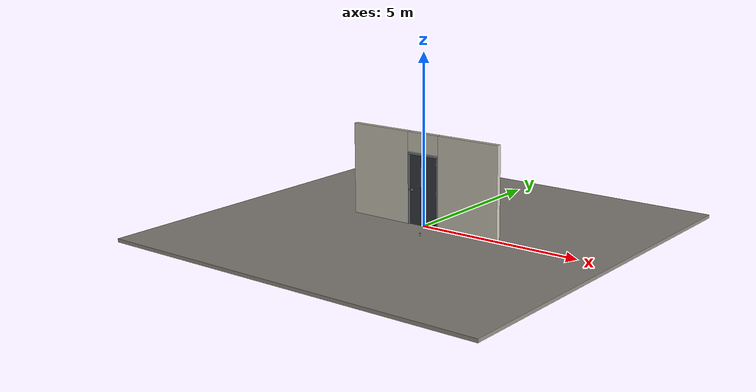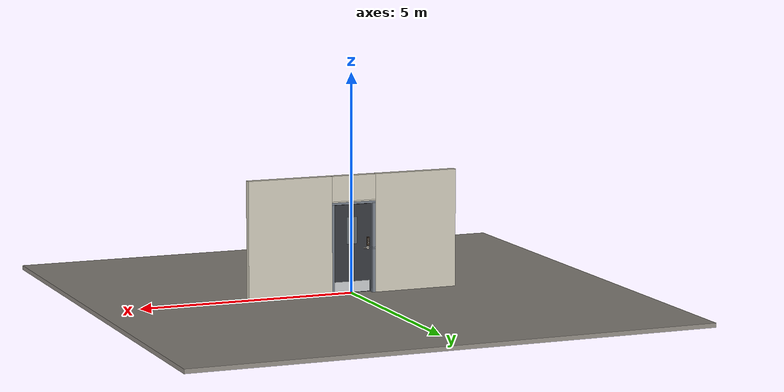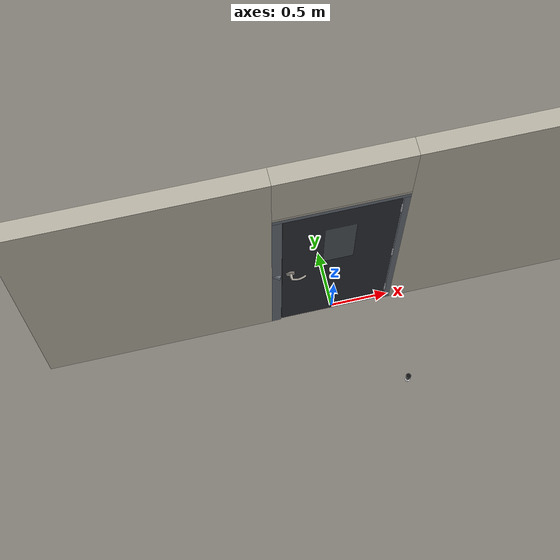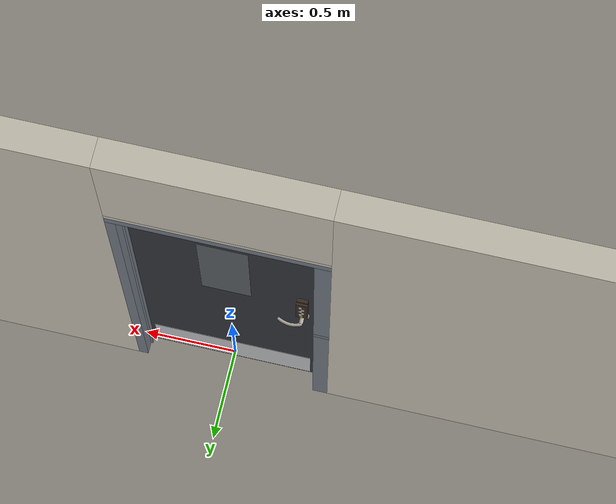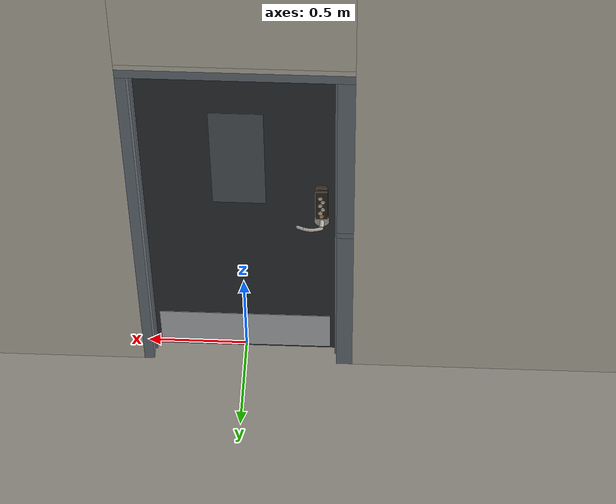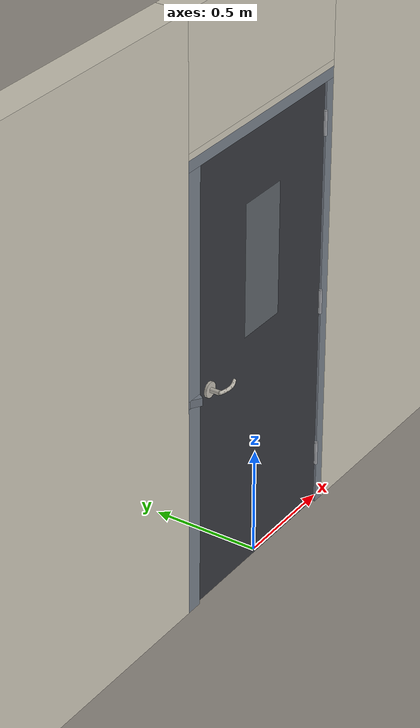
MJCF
<?xml version="1.0" ?>
<mujoco model="db0209_swing_single_full">
  <compiler angle="radian" meshdir="../../hardware" texturedir="../../textures" autolimits="true" inertiafromgeom="false"/>
  <option timestep="0.002" integrator="implicitfast" cone="elliptic" impratio="10" noslip_iterations="3">
    <flag multiccd="enable"/>
  </option>
  <size memory="16M"/>
  <default>
    <geom condim="4" solref="0.005 1" solimp="0.95 0.99 0.001"/>
    <joint solreflimit="0.005 1" solimplimit="0.95 0.99 0.001"/>
    <tendon solreflimit="0.005 1"/>
    <equality solref="0.002 1"/>
  </default>
  <visual>
    <headlight ambient="0.4 0.4 0.4" diffuse="0.7 0.7 0.7" specular="0.2 0.2 0.2"/>
    <quality shadowsize="4096"/>
    <map znear="0.01" zfar="60"/>
  </visual>
  <asset>
    <mesh name="hinge_e22b26c0c1" file="hinge_e22b26c0c1.obj"/>
    <mesh name="hinge_jamb_e1d088f8dc" file="hinge_jamb_e1d088f8dc.obj"/>
    <mesh name="keypad_body_91eb8ded3e" file="keypad_body_91eb8ded3e.obj"/>
    <mesh name="lever_a61139b160" file="lever_a61139b160.obj"/>
    <material name="mat_floor" rgba="0.55 0.53 0.5 1" specular="0.2" shininess="0.15" reflectance="0"/>
    <material name="mat_wall" rgba="0.78 0.76 0.7 1" specular="0.2" shininess="0.1" reflectance="0"/>
    <material name="mat_leaf" rgba="0.2 0.21 0.23 1" specular="0.2" shininess="0.63" reflectance="0"/>
    <material name="mat_glass" rgba="0.85 0.92 0.95 0.25" specular="0.2" shininess="0.95" reflectance="0.1"/>
    <material name="mat_hinge" rgba="0.65 0.66 0.68 1" specular="0.74" shininess="0.5" reflectance="0.36"/>
    <material name="mat_op_nickel_satin" rgba="0.72 0.7 0.66 1" specular="0.8" shininess="0.65" reflectance="0.4"/>
    <material name="mat_trim" rgba="0.85 0.66 0.3 1" specular="0.8" shininess="0.75" reflectance="0.4"/>
    <material name="mat_keypad" rgba="0.22 0.17 0.13 1" specular="0.8" shininess="0.6" reflectance="0.4"/>
    <material name="mat_key" rgba="0.85 0.85 0.82 1" specular="0.2" shininess="0.5" reflectance="0"/>
    <material name="mat_bolt" rgba="0.85 0.66 0.3 1" specular="0.8" shininess="0.75" reflectance="0.4"/>
    <material name="mat_frame" rgba="0.45 0.48 0.52 1" specular="0.32" shininess="0.6" reflectance="0.08"/>
    <material name="mat_seal" rgba="0.1 0.1 0.1 1" specular="0.2" shininess="0.1" reflectance="0"/>
    <material name="mat_kick" rgba="0.75 0.76 0.77 1" specular="0.8" shininess="0.65" reflectance="0.4"/>
    <material name="mat_bumper_stop" rgba="0.08 0.08 0.08 1" specular="0.2" shininess="0.1" reflectance="0"/>
    <material name="mat_stop_base" rgba="0.9 0.9 0.92 1" specular="0.8" shininess="0.9" reflectance="0.4"/>
    <texture name="skybox" type="skybox" builtin="gradient" rgb1="0.6 0.7 0.85" rgb2="0.9 0.92 0.95" width="256" height="256"/>
  </asset>
  <worldbody>
    <light name="sun" pos="1.5 -2.5 4" dir="-0.3 0.5 -0.8" directional="true" diffuse="0.8 0.8 0.8" specular="0.3 0.3 0.3" castshadow="true"/>
    <light name="fill" pos="-1.5 2.5 3" dir="0.3 -0.5 -0.7" directional="true" diffuse="0.35 0.35 0.4" castshadow="false"/>
    <camera name="robot_view" pos="0 -2.498687 1.734312" xyaxes="1 0 0 0 0.26963 0.962964" fovy="52"/>
    <camera name="far_view" pos="0 2.585687 1.734312" xyaxes="-1 0 0 0 -0.26963 0.962964" fovy="52"/>
    <camera name="iso" pos="-1.932062 -2.091938 2.141063" xyaxes="0.741536 -0.670913 0 0.242917 0.268487 0.932151" fovy="46"/>
    <camera name="detail_handle" pos="-0.1169 -0.877 1.296" xyaxes="0.97561 0.219512 0 -0.070934 0.315262 0.94635" fovy="38"/>
    <geom name="floor" type="box" size="6 6 0.05" pos="0 0 -0.05" material="mat_floor" group="0" contype="1" conaffinity="1" friction="0.8 0.005 0.0001" density="2400"/>
    <geom name="wall_left" type="box" size="0.97975 0.0725 1.35" pos="-1.52025 0.0435 1.35" material="mat_wall" group="0" contype="1" conaffinity="1" friction="0.6 0.005 0.0001" density="800"/>
    <geom name="wall_right" type="box" size="0.99475 0.0725 1.35" pos="1.50525 0.0435 1.35" material="mat_wall" group="0" contype="1" conaffinity="1" friction="0.6 0.005 0.0001" density="800"/>
    <geom name="wall_header" type="box" size="0.5255 0.0725 0.2875" pos="-0.015 0.0435 2.4125" material="mat_wall" group="0" contype="1" conaffinity="1" friction="0.6 0.005 0.0001" density="800"/>
    <geom name="hinge_0_jamb" type="mesh" mesh="hinge_jamb_e1d088f8dc" pos="0.4575 -0.029 0.259" quat="0 0 1 0" material="mat_hinge" group="1" contype="0" conaffinity="0" density="7850"/>
    <geom name="hinge_1_jamb" type="mesh" mesh="hinge_jamb_e1d088f8dc" pos="0.4575 -0.029 1.025" quat="0 0 1 0" material="mat_hinge" group="1" contype="0" conaffinity="0" density="7850"/>
    <geom name="hinge_2_jamb" type="mesh" mesh="hinge_jamb_e1d088f8dc" pos="0.4575 -0.029 1.861" quat="0 0 1 0" material="mat_hinge" group="1" contype="0" conaffinity="0" density="7850"/>
    <geom name="jamb_hinge" type="box" size="0.025 0.0725 1.0225" pos="0.4855 0.0435 1.0225" material="mat_frame" group="0" contype="1" conaffinity="1" friction="0.6 0.005 0.0001" density="300"/>
    <geom name="strike_1016_wall_n" type="box" size="0.04 0.05325 0.0183" pos="-0.5005 0.06275 1.016" material="mat_frame" group="0" contype="1" conaffinity="1" friction="0.6 0.005 0.0001" density="300"/>
    <geom name="strike_1016_wall_p" type="box" size="0.04 0.008 0.0183" pos="-0.5005 -0.0175 1.016" material="mat_frame" group="0" contype="1" conaffinity="1" friction="0.6 0.005 0.0001" density="300"/>
    <geom name="strike_1016_ramp" type="box" size="0.04 0.018028 0.0183" pos="-0.503782 -0.018312 1.016" quat="0.957092 0 0 -0.289784" material="mat_frame" group="0" contype="1" conaffinity="1" friction="0.12 0.005 0.0001" density="300"/>
    <geom name="strike_1016_back" type="box" size="0.0285 0.0095 0.0183" pos="-0.512 0 1.016" material="mat_frame" group="0" contype="1" conaffinity="1" friction="0.6 0.005 0.0001" density="300"/>
    <geom name="jamb_strike_0" type="box" size="0.04 0.0725 0.49885" pos="-0.5005 0.0435 0.49885" material="mat_frame" group="0" contype="1" conaffinity="1" friction="0.6 0.005 0.0001" density="300"/>
    <geom name="jamb_strike_1" type="box" size="0.04 0.0725 0.50535" pos="-0.5005 0.0435 1.53965" material="mat_frame" group="0" contype="1" conaffinity="1" friction="0.6 0.005 0.0001" density="300"/>
    <geom name="jamb_head" type="box" size="0.5255 0.0725 0.025" pos="-0.015 0.0435 2.07" material="mat_frame" group="0" contype="1" conaffinity="1" friction="0.6 0.005 0.0001" density="300"/>
    <geom name="head_stud" type="box" size="0.5255 0.0725 0.015" pos="-0.015 0.0435 2.11" material="mat_wall" group="0" contype="1" conaffinity="1" friction="0.6 0.005 0.0001" density="500"/>
    <geom name="stop_hinge" type="box" size="0.0055 0.016 1.0225" pos="0.455 0.0385 1.0225" material="mat_frame" group="0" contype="1" conaffinity="1" friction="0.6 0.005 0.0001" density="300"/>
    <geom name="stop_strike" type="box" size="0.0055 0.016 1.0225" pos="-0.455 0.0385 1.0225" material="mat_frame" group="0" contype="1" conaffinity="1" friction="0.6 0.005 0.0001" density="300"/>
    <geom name="stop_head" type="box" size="0.4605 0.016 0.0055" pos="0 0.0385 2.0395" material="mat_frame" group="0" contype="1" conaffinity="1" friction="0.6 0.005 0.0001" density="300"/>
    <geom name="seal_hinge" type="box" size="0.004 0.004 1.0225" pos="0.4575 0.026 1.0225" material="mat_seal" group="1" contype="0" conaffinity="0" density="1100"/>
    <geom name="seal_strike" type="box" size="0.004 0.004 1.0225" pos="-0.4575 0.026 1.0225" material="mat_seal" group="1" contype="0" conaffinity="0" density="1100"/>
    <geom name="seal_head" type="box" size="0.4405 0.004 0.008" pos="0 0.026 2.033" material="mat_seal" group="1" contype="0" conaffinity="0" density="1100"/>
    <geom name="door_stop_base" type="cylinder" size="0.022 0.003" pos="0.4735 -0.8059 0.003" material="mat_stop_base" group="0" contype="1" conaffinity="1" friction="0.6 0.005 0.0001" density="7850"/>
    <geom name="door_stop_post" type="cylinder" size="0.012 0.0245" pos="0.4735 -0.8059 0.0305" material="mat_stop_base" group="0" contype="1" conaffinity="1" friction="0.6 0.005 0.0001" density="7850"/>
    <geom name="door_stop_bumper" type="cylinder" size="0.022 0.02" pos="0.4735 -0.8059 0.075" material="mat_bumper_stop" group="0" contype="1" conaffinity="1" friction="0.6 0.005 0.0001" density="1100"/>
    <site name="approach_point" pos="0 -1.5 0" quat="1 0 0 0" size="0.05" rgba="0.2 0.9 0.2 0.5" group="4"/>
    <site name="goal_point" pos="0 1.5 0" quat="1 0 0 0" size="0.05" rgba="0.2 0.9 0.2 0.5" group="4"/>
    <site name="door_plane_center" pos="0 0 1.0225" quat="1 0 0 0" size="0.02" rgba="0.2 0.9 0.2 0.5" group="4"/>
    <body name="leaf" pos="0.4605 0 0">
      <inertial pos="-0.459259 0.001485 0.98116" mass="54.622674" quat="0.500018 0.499022 -0.502249 0.498703" diaginertia="3.959946698 19.757913809 23.696101358"/>
      <joint name="leaf_hinge" type="hinge" axis="0 0 1" pos="-0.003 -0.029 0" limited="true" range="0 1.570796" solreflimit="0.02 1" damping="0.30611" frictionloss="2.238429" armature="0.02"/>
      <geom name="leaf_slab" type="box" size="0.457 0.022 1.016" pos="-0.46 0 1.025" material="mat_leaf" group="0" contype="1" conaffinity="1" friction="0.4 0.005 0.0001" density="1"/>
      <geom name="leaf_glass_0" type="box" size="0.125 0.0228 0.3048" pos="-0.46 0 1.4314" material="mat_glass" group="1" contype="0" conaffinity="0" density="1"/>
      <geom name="hinge_0" type="mesh" mesh="hinge_e22b26c0c1" pos="-0.003 -0.029 0.259" quat="0 0 1 0" material="mat_hinge" group="1" contype="0" conaffinity="0" density="7850"/>
      <geom name="hinge_1" type="mesh" mesh="hinge_e22b26c0c1" pos="-0.003 -0.029 1.025" quat="0 0 1 0" material="mat_hinge" group="1" contype="0" conaffinity="0" density="7850"/>
      <geom name="hinge_2" type="mesh" mesh="hinge_e22b26c0c1" pos="-0.003 -0.029 1.861" quat="0 0 1 0" material="mat_hinge" group="1" contype="0" conaffinity="0" density="7850"/>
      <geom name="leaf_keypad_body" type="mesh" mesh="keypad_body_91eb8ded3e" pos="-0.847 0.022 1.156" quat="0 0 0.707107 0.707107" material="mat_keypad" group="0" contype="1" conaffinity="1" friction="0.6 0.005 0.0001" density="2000"/>
      <geom name="leaf_keypad_cylinder" type="cylinder" size="0.009 0.002" pos="-0.847 0.056 1.081" quat="0.707107 -0.707107 0 0" material="mat_trim" group="1" contype="0" conaffinity="0" density="7100"/>
      <geom name="leaf_latch_bolt_faceplate" type="box" size="0.0006 0.014 0.0283" pos="-0.9164 0 1.016" material="mat_bolt" group="1" contype="0" conaffinity="0" density="8500"/>
      <geom name="kick_plate_p" type="box" size="0.427 0.0008 0.125" pos="-0.46 0.0228 0.144" material="mat_kick" group="2" contype="0" conaffinity="0" density="7900"/>
      <site name="leaf_edge_mid" pos="-0.917 0 1.016" quat="1 0 0 0" size="0.02" rgba="0.2 0.9 0.2 0.5" group="4"/>
      <body name="leaf_handle" pos="-0.847 0 1.016">
        <inertial pos="0.022132 -0.050687 0" mass="0.463269" quat="0.312008 0 0 0.950079" diaginertia="0.000227859 0.000847742 0.000992066"/>
        <joint name="leaf_handle_hinge" type="hinge" axis="0 1 0" limited="true" range="0 0.87" damping="0.208392" frictionloss="0.052" stiffness="1" springref="-0.35" armature="0.01"/>
        <geom name="leaf_handle_spindle" type="cylinder" size="0.006 0.03" pos="0 0 0" quat="0.707107 -0.707107 0 0" material="mat_op_nickel_satin" group="1" contype="0" conaffinity="0" density="7850"/>
        <geom name="leaf_handle_lever_n" type="mesh" mesh="lever_a61139b160" pos="0 -0.022 0" quat="0 0 -0.707107 0.707107" material="mat_op_nickel_satin" group="1" contype="0" conaffinity="0" density="3000"/>
        <geom name="leaf_handle_lever_col_n" type="capsule" size="0.008 0.048" pos="0.056 -0.077 0" quat="0.707107 0 0.707107 0" material="mat_op_nickel_satin" group="3" contype="1" conaffinity="1" rgba="0.8 0.3 0.3 0.25" friction="0.7 0.01 0.0001" density="3000"/>
        <geom name="leaf_handle_hub_col_n" type="cylinder" size="0.012 0.022" pos="0 -0.052 0" quat="0.707107 -0.707107 0 0" material="mat_op_nickel_satin" group="3" contype="1" conaffinity="1" rgba="0.8 0.3 0.3 0.25" friction="0.6 0.005 0.0001" density="3000"/>
        <site name="leaf_handle_grip_n" pos="0.0896 -0.077 0" quat="1 0 0 0" size="0.012" rgba="0.2 0.9 0.2 0.5" group="4"/>
      </body>
      <body name="leaf_keypad_key_1" pos="-0.841 0.054 1.208">
        <inertial pos="0 0.002 0" mass="0.001221" quat="0 0 0.707107 -0.707107" diaginertia="0.000000026 0.000000026 0.000000049"/>
        <joint name="leaf_keypad_key_1_slide" type="slide" axis="0 -1 0" limited="true" range="0 0.004" damping="17.146" frictionloss="0.05" stiffness="1500" springref="-0.004" armature="0.1"/>
        <geom name="leaf_keypad_key_1_geom" type="cylinder" size="0.009 0.002" pos="0 0.002 0" quat="0.707107 -0.707107 0 0" material="mat_key" group="0" contype="1" conaffinity="1" friction="0.6 0.005 0.0001" density="1200"/>
        <site name="leaf_keypad_key_1_press" pos="0 0.006 0" quat="1 0 0 0" size="0.008" rgba="0.2 0.9 0.2 0.5" group="4"/>
      </body>
      <body name="leaf_keypad_key_2" pos="-0.853 0.054 1.182">
        <inertial pos="0 0.002 0" mass="0.001221" quat="0 0 0.707107 -0.707107" diaginertia="0.000000026 0.000000026 0.000000049"/>
        <joint name="leaf_keypad_key_2_slide" type="slide" axis="0 -1 0" limited="true" range="0 0.004" damping="17.146" frictionloss="0.05" stiffness="1500" springref="-0.004" armature="0.1"/>
        <geom name="leaf_keypad_key_2_geom" type="cylinder" size="0.009 0.002" pos="0 0.002 0" quat="0.707107 -0.707107 0 0" material="mat_key" group="0" contype="1" conaffinity="1" friction="0.6 0.005 0.0001" density="1200"/>
        <site name="leaf_keypad_key_2_press" pos="0 0.006 0" quat="1 0 0 0" size="0.008" rgba="0.2 0.9 0.2 0.5" group="4"/>
      </body>
      <body name="leaf_keypad_key_3" pos="-0.841 0.054 1.156">
        <inertial pos="0 0.002 0" mass="0.001221" quat="0 0 0.707107 -0.707107" diaginertia="0.000000026 0.000000026 0.000000049"/>
        <joint name="leaf_keypad_key_3_slide" type="slide" axis="0 -1 0" limited="true" range="0 0.004" damping="17.146" frictionloss="0.05" stiffness="1500" springref="-0.004" armature="0.1"/>
        <geom name="leaf_keypad_key_3_geom" type="cylinder" size="0.009 0.002" pos="0 0.002 0" quat="0.707107 -0.707107 0 0" material="mat_key" group="0" contype="1" conaffinity="1" friction="0.6 0.005 0.0001" density="1200"/>
        <site name="leaf_keypad_key_3_press" pos="0 0.006 0" quat="1 0 0 0" size="0.008" rgba="0.2 0.9 0.2 0.5" group="4"/>
      </body>
      <body name="leaf_keypad_key_4" pos="-0.853 0.054 1.13">
        <inertial pos="0 0.002 0" mass="0.001221" quat="0 0 0.707107 -0.707107" diaginertia="0.000000026 0.000000026 0.000000049"/>
        <joint name="leaf_keypad_key_4_slide" type="slide" axis="0 -1 0" limited="true" range="0 0.004" damping="17.146" frictionloss="0.05" stiffness="1500" springref="-0.004" armature="0.1"/>
        <geom name="leaf_keypad_key_4_geom" type="cylinder" size="0.009 0.002" pos="0 0.002 0" quat="0.707107 -0.707107 0 0" material="mat_key" group="0" contype="1" conaffinity="1" friction="0.6 0.005 0.0001" density="1200"/>
        <site name="leaf_keypad_key_4_press" pos="0 0.006 0" quat="1 0 0 0" size="0.008" rgba="0.2 0.9 0.2 0.5" group="4"/>
      </body>
      <body name="leaf_keypad_key_5" pos="-0.841 0.054 1.104">
        <inertial pos="0 0.002 0" mass="0.001221" quat="0 0 0.707107 -0.707107" diaginertia="0.000000026 0.000000026 0.000000049"/>
        <joint name="leaf_keypad_key_5_slide" type="slide" axis="0 -1 0" limited="true" range="0 0.004" damping="17.146" frictionloss="0.05" stiffness="1500" springref="-0.004" armature="0.1"/>
        <geom name="leaf_keypad_key_5_geom" type="cylinder" size="0.009 0.002" pos="0 0.002 0" quat="0.707107 -0.707107 0 0" material="mat_key" group="0" contype="1" conaffinity="1" friction="0.6 0.005 0.0001" density="1200"/>
        <site name="leaf_keypad_key_5_press" pos="0 0.006 0" quat="1 0 0 0" size="0.008" rgba="0.2 0.9 0.2 0.5" group="4"/>
      </body>
      <body name="leaf_handle_out" pos="-0.847 0 1.016">
        <inertial pos="0.025007 0.057273 0" mass="0.41" quat="-0.235955 0 0 0.971764" diaginertia="0.000156759 0.000717302 0.000791484"/>
        <joint name="leaf_handle_out_hinge" type="hinge" axis="0 1 0" limited="true" range="0 0.87" damping="0.208382" frictionloss="0.052" stiffness="1" springref="-0.35" armature="0.01"/>
        <geom name="leaf_handle_out_lever_p" type="mesh" mesh="lever_a61139b160" pos="0 0.022 0" quat="0 0 0.707107 0.707107" material="mat_op_nickel_satin" group="1" contype="0" conaffinity="0" density="3000"/>
        <geom name="leaf_handle_out_lever_col_p" type="capsule" size="0.008 0.048" pos="0.056 0.077 0" quat="0.707107 0 0.707107 0" material="mat_op_nickel_satin" group="3" contype="1" conaffinity="1" rgba="0.8 0.3 0.3 0.25" friction="0.7 0.01 0.0001" density="3000"/>
        <geom name="leaf_handle_out_hub_col_p" type="cylinder" size="0.012 0.022" pos="0 0.052 0" quat="0.707107 -0.707107 0 0" material="mat_op_nickel_satin" group="3" contype="1" conaffinity="1" rgba="0.8 0.3 0.3 0.25" friction="0.6 0.005 0.0001" density="3000"/>
        <site name="leaf_handle_out_grip_p" pos="0.0896 0.077 0" quat="1 0 0 0" size="0.012" rgba="0.2 0.9 0.2 0.5" group="4"/>
      </body>
      <body name="leaf_latch_bolt" pos="-0.917 0 1.016">
        <inertial pos="0.0055 0 0" mass="0.074627" quat="0.92388 0.382683 0 0" diaginertia="0.000002271 0.000013255 0.000013255"/>
        <joint name="leaf_latch_bolt_slide" type="slide" axis="1 0 0" limited="true" range="0 0.019" damping="2" frictionloss="0.3" stiffness="600" springref="-0.01" armature="0.1"/>
        <geom name="leaf_latch_bolt_capsule" type="capsule" size="0.008 0.0165" pos="0.0055 0 0" quat="0.707107 0 -0.707107 0" material="mat_bolt" group="0" contype="1" conaffinity="1" friction="0.2 0.005 0.0001" density="8500"/>
      </body>
    </body>
  </worldbody>
  <tendon>
    <fixed name="leaf_latch_bolt_coupling" limited="true" range="0 10">
      <joint joint="leaf_latch_bolt_slide" coef="1"/>
      <joint joint="leaf_handle_hinge" coef="-0.023457"/>
      <joint joint="leaf_handle_out_hinge" coef="-0.023457"/>
    </fixed>
  </tendon>
  <sensor>
    <jointpos name="leaf_hinge_pos" joint="leaf_hinge"/>
    <jointvel name="leaf_hinge_vel" joint="leaf_hinge"/>
    <jointpos name="leaf_handle_hinge_pos" joint="leaf_handle_hinge"/>
    <jointvel name="leaf_handle_hinge_vel" joint="leaf_handle_hinge"/>
    <jointpos name="leaf_keypad_key_1_slide_pos" joint="leaf_keypad_key_1_slide"/>
    <jointvel name="leaf_keypad_key_1_slide_vel" joint="leaf_keypad_key_1_slide"/>
    <jointpos name="leaf_keypad_key_2_slide_pos" joint="leaf_keypad_key_2_slide"/>
    <jointvel name="leaf_keypad_key_2_slide_vel" joint="leaf_keypad_key_2_slide"/>
    <jointpos name="leaf_keypad_key_3_slide_pos" joint="leaf_keypad_key_3_slide"/>
    <jointvel name="leaf_keypad_key_3_slide_vel" joint="leaf_keypad_key_3_slide"/>
    <jointpos name="leaf_keypad_key_4_slide_pos" joint="leaf_keypad_key_4_slide"/>
    <jointvel name="leaf_keypad_key_4_slide_vel" joint="leaf_keypad_key_4_slide"/>
    <jointpos name="leaf_keypad_key_5_slide_pos" joint="leaf_keypad_key_5_slide"/>
    <jointvel name="leaf_keypad_key_5_slide_vel" joint="leaf_keypad_key_5_slide"/>
    <jointpos name="leaf_handle_out_hinge_pos" joint="leaf_handle_out_hinge"/>
    <jointvel name="leaf_handle_out_hinge_vel" joint="leaf_handle_out_hinge"/>
    <jointpos name="leaf_latch_bolt_slide_pos" joint="leaf_latch_bolt_slide"/>
    <jointvel name="leaf_latch_bolt_slide_vel" joint="leaf_latch_bolt_slide"/>
  </sensor>
</mujoco>
